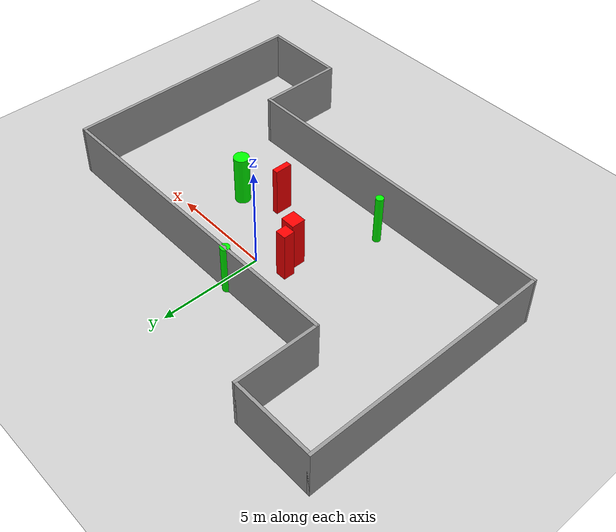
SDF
<sdf version="1.7">
 <world name="default">
  <light name="sun" type="directional">
   <pose>0 0 10 0 -0 0</pose>
   <diffuse>0.8 0.8 0.8 1</diffuse>
   <specular>0.2 0.2 0.2 1</specular>
   <attenuation>
    <range>1000</range>
    <constant>0.9</constant>
    <linear>0.01</linear>
    <quadratic>0.001</quadratic>
   </attenuation>
   <direction>-0.5 0.1 -0.9</direction>
   <spot><inner_angle>0</inner_angle><outer_angle>0</outer_angle><falloff>0</falloff></spot>
  </light>
  <model name="ground_plane">
   <static>1</static>
   <link name="link">
    <collision name="collision">
     <geometry><plane><normal>0 0 1</normal><size>100 100</size></plane></geometry>
     <surface>
      <contact><collide_bitmask>65535</collide_bitmask></contact>
      <friction><ode><mu>100</mu><mu2>50</mu2></ode></friction>
     </surface>
    </collision>
    <visual name="visual">
     <cast_shadows>0</cast_shadows>
     <geometry><plane><normal>0 0 1</normal><size>100 100</size></plane></geometry>
     <material>
      <script><uri>file://media/materials/scripts/gazebo.material</uri><name>Gazebo/Grey</name></script>
     </material>
    </visual>
   </link>
  </model>
  <gravity>0 0 -9.8</gravity>
  <magnetic_field>6e-06 2.3e-05 -4.2e-05</magnetic_field>
  <atmosphere type="adiabatic"/>
  <physics type="ode">
   <max_step_size>0.001</max_step_size>
   <real_time_factor>1</real_time_factor>
   <real_time_update_rate>1000</real_time_update_rate>
  </physics>
  <scene><ambient>0.4 0.4 0.4 1</ambient><background>0.7 0.7 0.7 1</background><shadows>1</shadows></scene>
  <spherical_coordinates>
   <surface_model>EARTH_WGS84</surface_model>
   <latitude_deg>0</latitude_deg>
   <longitude_deg>0</longitude_deg>
   <elevation>0</elevation>
   <heading_deg>0</heading_deg>
  </spherical_coordinates>
  <model name="my_base_walls">
   <link name="Wall_13">
    <collision name="Wall_13_Collision">
     <geometry><box><size>12.15 0.15 2.5</size></box></geometry>
     <pose>0 0 1.25 0 -0 0</pose>
    </collision>
    <visual name="Wall_13_Visual">
     <pose>0 0 1.25 0 -0 0</pose>
     <geometry><box><size>12.15 0.15 2.5</size></box></geometry>
     <material>
      <script><uri>file://media/materials/scripts/gazebo.material</uri><name>Gazebo/Grey</name></script>
      <ambient>1 1 1 1</ambient>
     </material>
     <meta><layer>0</layer></meta>
    </visual>
    <pose>10 -2 0 0 -0 1.5708</pose>
   </link>
   <link name="Wall_15">
    <collision name="Wall_15_Collision">
     <geometry><box><size>16.15 0.15 2.5</size></box></geometry>
     <pose>0 0 1.25 0 -0 0</pose>
    </collision>
    <visual name="Wall_15_Visual">
     <pose>0 0 1.25 0 -0 0</pose>
     <geometry><box><size>16.15 0.15 2.5</size></box></geometry>
     <material>
      <script><uri>file://media/materials/scripts/gazebo.material</uri><name>Gazebo/Grey</name></script>
      <ambient>1 1 1 1</ambient>
     </material>
     <meta><layer>0</layer></meta>
    </visual>
    <pose>2 4 0 0 -0 3.14159</pose>
   </link>
   <link name="Wall_17">
    <collision name="Wall_17_Collision">
     <geometry><box><size>4.15 0.15 2.5</size></box></geometry>
     <pose>0 0 1.25 0 -0 0</pose>
    </collision>
    <visual name="Wall_17_Visual">
     <pose>0 0 1.25 0 -0 0</pose>
     <geometry><box><size>4.15 0.15 2.5</size></box></geometry>
     <material>
      <script><uri>file://media/materials/scripts/gazebo.material</uri><name>Gazebo/Grey</name></script>
      <ambient>1 1 1 1</ambient>
     </material>
     <meta><layer>0</layer></meta>
    </visual>
    <pose>6 -6 0 0 -0 -1.5708</pose>
   </link>
   <link name="Wall_19">
    <collision name="Wall_19_Collision">
     <geometry><box><size>12.15 0.15 2.5</size></box></geometry>
     <pose>0 0 1.25 0 -0 0</pose>
    </collision>
    <visual name="Wall_19_Visual">
     <pose>0 0 1.25 0 -0 0</pose>
     <geometry><box><size>12.15 0.15 2.5</size></box></geometry>
     <material>
      <script><uri>file://media/materials/scripts/gazebo.material</uri><name>Gazebo/Grey</name></script>
      <ambient>1 1 1 1</ambient>
     </material>
     <meta><layer>0</layer></meta>
    </visual>
    <pose>-10 2 0 0 -0 1.5708</pose>
   </link>
   <link name="Wall_21">
    <collision name="Wall_21_Collision">
     <geometry><box><size>4.15 0.15 2.5</size></box></geometry>
     <pose>0 0 1.25 0 -0 0</pose>
    </collision>
    <visual name="Wall_21_Visual">
     <pose>0 0 1.25 0 -0 0</pose>
     <geometry><box><size>4.15 0.15 2.5</size></box></geometry>
     <material>
      <script><uri>file://media/materials/scripts/gazebo.material</uri><name>Gazebo/Grey</name></script>
      <ambient>1 1 1 1</ambient>
     </material>
     <meta><layer>0</layer></meta>
    </visual>
    <pose>-8 8 0 0 -0 0</pose>
   </link>
   <link name="Wall_23">
    <collision name="Wall_23_Collision">
     <geometry><box><size>4.15 0.15 2.5</size></box></geometry>
     <pose>0 0 1.25 0 -0 0</pose>
    </collision>
    <visual name="Wall_23_Visual">
     <pose>0 0 1.25 0 -0 0</pose>
     <geometry><box><size>4.15 0.15 2.5</size></box></geometry>
     <material>
      <script><uri>file://media/materials/scripts/gazebo.material</uri><name>Gazebo/Grey</name></script>
      <ambient>1 1 1 1</ambient>
     </material>
     <meta><layer>0</layer></meta>
    </visual>
    <pose>-6 6 0 0 -0 -1.5708</pose>
   </link>
   <link name="Wall_25">
    <collision name="Wall_25_Collision">
     <geometry><box><size>4.15 0.15 2.5</size></box></geometry>
     <pose>0 0 1.25 0 -0 0</pose>
    </collision>
    <visual name="Wall_25_Visual">
     <pose>0 0 1.25 0 -0 0</pose>
     <geometry><box><size>4.15 0.15 2.5</size></box></geometry>
     <material>
      <script><uri>file://media/materials/scripts/gazebo.material</uri><name>Gazebo/Grey</name></script>
      <ambient>1 1 1 1</ambient>
     </material>
     <meta><layer>0</layer></meta>
    </visual>
    <pose>8 -8 0 0 -0 0</pose>
   </link>
   <link name="Wall_9">
    <collision name="Wall_9_Collision">
     <geometry><box><size>16.15 0.15 2.5</size></box></geometry>
     <pose>0 0 1.25 0 -0 0</pose>
    </collision>
    <visual name="Wall_9_Visual">
     <pose>0 0 1.25 0 -0 0</pose>
     <geometry><box><size>16.15 0.15 2.5</size></box></geometry>
     <material>
      <script><uri>file://media/materials/scripts/gazebo.material</uri><name>Gazebo/Grey</name></script>
      <ambient>1 1 1 1</ambient>
     </material>
     <meta><layer>0</layer></meta>
    </visual>
    <pose>-2 -4 0 0 -0 3.14159</pose>
   </link>
   <static>1</static>
   <pose>-0 -2 0 0 -0 0</pose>
  </model>
  <model name="cylinder1">
   <static>1</static>
   <link name="link">
    <inertial>
     <mass>1</mass>
     <inertia><ixx>0.5</ixx><ixy>0</ixy><ixz>0</ixz><iyy>0.5</iyy><iyz>0</iyz><izz>1</izz></inertia>
    </inertial>
    <collision name="collision">
     <geometry><cylinder><radius>0.3706391483210021</radius><length>2.5</length></cylinder></geometry>
    </collision>
    <visual name="visual">
     <geometry><cylinder><radius>0.3706391483210021</radius><length>2.5</length></cylinder></geometry>
     <material>
      <ambient>0 1 0 1</ambient>
      <diffuse>0 1 0 1</diffuse>
      <specular>0.1 0.1 0.1 1</specular>
      <emissive>0 0 0 0</emissive>
     </material>
    </visual>
   </link>
   <pose>3.5537024192487436 -2.1770198952526476 1.25 0 0 0</pose>
  </model>
  <model name="cylinder2">
   <static>1</static>
   <link name="link">
    <inertial>
     <mass>1</mass>
     <inertia><ixx>0.5</ixx><ixy>0</ixy><ixz>0</ixz><iyy>0.5</iyy><iyz>0</iyz><izz>1</izz></inertia>
    </inertial>
    <collision name="collision">
     <geometry><cylinder><radius>0.18796529422554403</radius><length>2.5</length></cylinder></geometry>
    </collision>
    <visual name="visual">
     <geometry><cylinder><radius>0.18796529422554403</radius><length>2.5</length></cylinder></geometry>
     <material>
      <ambient>0 1 0 1</ambient>
      <diffuse>0 1 0 1</diffuse>
      <specular>0.1 0.1 0.1 1</specular>
      <emissive>0 0 0 0</emissive>
     </material>
    </visual>
   </link>
   <pose>-2.5510247299211257 -4.888205908333049 1.25 0 0 0</pose>
  </model>
  <model name="cylinder3">
   <static>1</static>
   <link name="link">
    <inertial>
     <mass>1</mass>
     <inertia><ixx>0.5</ixx><ixy>0</ixy><ixz>0</ixz><iyy>0.5</iyy><iyz>0</iyz><izz>1</izz></inertia>
    </inertial>
    <collision name="collision">
     <geometry><cylinder><radius>0.22546243019407972</radius><length>2.5</length></cylinder></geometry>
    </collision>
    <visual name="visual">
     <geometry><cylinder><radius>0.22546243019407972</radius><length>2.5</length></cylinder></geometry>
     <material>
      <ambient>0 1 0 1</ambient>
      <diffuse>0 1 0 1</diffuse>
      <specular>0.1 0.1 0.1 1</specular>
      <emissive>0 0 0 0</emissive>
     </material>
    </visual>
   </link>
   <pose>-0.432425056322451 1.9856942996504285 1.25 0 0 0</pose>
  </model>
  <model name="box1">
   <static>1</static>
   <link name="link">
    <inertial>
     <mass>1</mass>
     <inertia><ixx>0.083</ixx><ixy>0</ixy><ixz>0</ixz><iyy>0.083</iyy><iyz>0</iyz><izz>0.083</izz></inertia>
    </inertial>
    <collision name="collision">
     <geometry><box><size>0.5354729843010501 0.5510116895689716 2.5</size></box></geometry>
    </collision>
    <visual name="visual">
     <geometry><box><size>0.5354729843010501 0.5510116895689716 2.5</size></box></geometry>
     <material>
      <ambient>1 0 0 1</ambient>
      <diffuse>1 0 0 1</diffuse>
      <specular>0.1 0.1 0.1 1</specular>
      <emissive>0 0 0 0</emissive>
     </material>
    </visual>
    <sensor name="my_contact" type="contact">
     <contact><collision>box_collision</collision><topic>__default_topic__</topic></contact>
    </sensor>
   </link>
   <pose>-1.4045227143383334 -0.4479154920391739 1.25 0 0 0</pose>
  </model>
  <model name="box2">
   <static>1</static>
   <link name="link">
    <inertial>
     <mass>1</mass>
     <inertia><ixx>0.083</ixx><ixy>0</ixy><ixz>0</ixz><iyy>0.083</iyy><iyz>0</iyz><izz>0.083</izz></inertia>
    </inertial>
    <collision name="collision">
     <geometry><box><size>0.7166969083013401 0.6834388385325354 2.5</size></box></geometry>
    </collision>
    <visual name="visual">
     <geometry><box><size>0.7166969083013401 0.6834388385325354 2.5</size></box></geometry>
     <material>
      <ambient>1 0 0 1</ambient>
      <diffuse>1 0 0 1</diffuse>
      <specular>0.1 0.1 0.1 1</specular>
      <emissive>0 0 0 0</emissive>
     </material>
    </visual>
    <sensor name="my_contact" type="contact">
     <contact><collision>box_collision</collision><topic>__default_topic__</topic></contact>
    </sensor>
   </link>
   <pose>-1.0614346901078182 -1.2033048036744418 1.25 0 0 0</pose>
  </model>
  <model name="box3">
   <static>1</static>
   <link name="link">
    <inertial>
     <mass>1</mass>
     <inertia><ixx>0.083</ixx><ixy>0</ixy><ixz>0</ixz><iyy>0.083</iyy><iyz>0</iyz><izz>0.083</izz></inertia>
    </inertial>
    <collision name="collision">
     <geometry><box><size>0.2826017703195481 0.8444542622169292 2.5</size></box></geometry>
    </collision>
    <visual name="visual">
     <geometry><box><size>0.2826017703195481 0.8444542622169292 2.5</size></box></geometry>
     <material>
      <ambient>1 0 0 1</ambient>
      <diffuse>1 0 0 1</diffuse>
      <specular>0.1 0.1 0.1 1</specular>
      <emissive>0 0 0 0</emissive>
     </material>
    </visual>
    <sensor name="my_contact" type="contact">
     <contact><collision>box_collision</collision><topic>__default_topic__</topic></contact>
    </sensor>
   </link>
   <pose>1.8019085489911424 -3.0781059071926427 1.25 0 0 0</pose>
  </model>
 </world>
</sdf>
